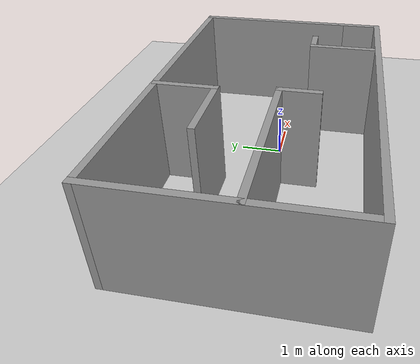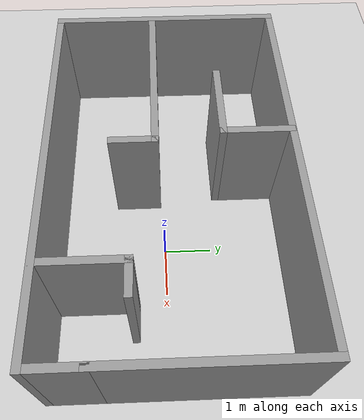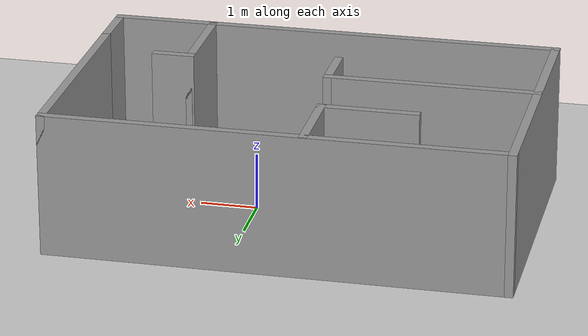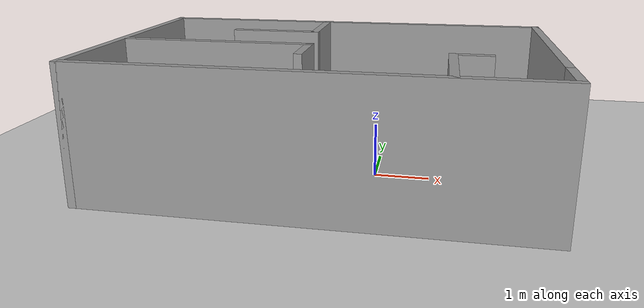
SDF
<sdf version="1.7">
 <world name="default">
  <light name="sun" type="directional">
   <pose>0 0 10 0 -0 0</pose>
   <diffuse>0.8 0.8 0.8 1</diffuse>
   <specular>0.2 0.2 0.2 1</specular>
   <attenuation>
    <range>1000</range>
    <constant>0.9</constant>
    <linear>0.01</linear>
    <quadratic>0.001</quadratic>
   </attenuation>
   <direction>-0.5 0.1 -0.9</direction>
   <spot><inner_angle>0</inner_angle><outer_angle>0</outer_angle><falloff>0</falloff></spot>
  </light>
  <model name="ground_plane">
   <static>1</static>
   <link name="link">
    <collision name="collision">
     <geometry><plane><normal>0 0 1</normal><size>100 100</size></plane></geometry>
     <surface><friction><ode><mu>100</mu><mu2>50</mu2></ode></friction></surface>
    </collision>
    <visual name="visual">
     <cast_shadows>0</cast_shadows>
     <geometry><plane><normal>0 0 1</normal><size>100 100</size></plane></geometry>
     <material>
      <script><uri>file://media/materials/scripts/gazebo.material</uri><name>Gazebo/Grey</name></script>
     </material>
    </visual>
   </link>
  </model>
  <gravity>0 0 -9.8</gravity>
  <magnetic_field>6e-06 2.3e-05 -4.2e-05</magnetic_field>
  <atmosphere type="adiabatic"/>
  <physics type="ode">
   <max_step_size>0.001</max_step_size>
   <real_time_factor>1</real_time_factor>
   <real_time_update_rate>1000</real_time_update_rate>
  </physics>
  <scene><ambient>0.4 0.4 0.4 1</ambient><background>0.7 0.7 0.7 1</background><shadows>1</shadows></scene>
  <audio><device>default</device></audio>
  <spherical_coordinates>
   <surface_model>EARTH_WGS84</surface_model>
   <latitude_deg>0</latitude_deg>
   <longitude_deg>0</longitude_deg>
   <elevation>0</elevation>
   <heading_deg>0</heading_deg>
  </spherical_coordinates>
  <model name="room">
   <pose>-0.895 0.637398 0 0 -0 0</pose>
   <link name="Wall_1">
    <collision name="Wall_1_Collision">
     <geometry><box><size>8 0.15 2.5</size></box></geometry>
     <pose>0 0 1.25 0 -0 0</pose>
    </collision>
    <visual name="Wall_1_Visual">
     <pose>0 0 1.25 0 -0 0</pose>
     <geometry><box><size>8 0.15 2.5</size></box></geometry>
     <material>
      <script><uri>file://media/materials/scripts/gazebo.material</uri><name>Gazebo/Grey</name></script>
      <ambient>1 1 1 1</ambient>
     </material>
     <meta><layer>0</layer></meta>
    </visual>
    <pose>0 1.9525 0 0 -0 0</pose>
   </link>
   <link name="Wall_10">
    <collision name="Wall_10_Collision">
     <geometry><box><size>8 0.15 2.5</size></box></geometry>
     <pose>0 0 1.25 0 -0 0</pose>
    </collision>
    <visual name="Wall_10_Visual">
     <pose>0 0 1.25 0 -0 0</pose>
     <geometry><box><size>8 0.15 2.5</size></box></geometry>
     <material>
      <script><uri>file://media/materials/scripts/gazebo.material</uri><name>Gazebo/Grey</name></script>
      <ambient>1 1 1 1</ambient>
     </material>
     <meta><layer>0</layer></meta>
    </visual>
    <pose>0 -2.8975 0 0 -0 0</pose>
   </link>
   <link name="Wall_12">
    <collision name="Wall_12_Collision">
     <geometry><box><size>1.5 0.15 2.5</size></box></geometry>
     <pose>0 0 1.25 0 -0 0</pose>
    </collision>
    <visual name="Wall_12_Visual">
     <pose>0 0 1.25 0 -0 0</pose>
     <geometry><box><size>1.5 0.15 2.5</size></box></geometry>
     <material>
      <script><uri>file://media/materials/scripts/gazebo.material</uri><name>Gazebo/Grey</name></script>
      <ambient>1 1 1 1</ambient>
     </material>
     <meta><layer>0</layer></meta>
    </visual>
    <pose>-0.49194 1.26027 0 0 -0 -1.5708</pose>
   </link>
   <link name="Wall_13">
    <collision name="Wall_13_Collision">
     <geometry><box><size>1.75 0.15 2.5</size></box></geometry>
     <pose>0 0 1.25 0 -0 0</pose>
    </collision>
    <visual name="Wall_13_Visual">
     <pose>0 0 1.25 0 -0 0</pose>
     <geometry><box><size>1.75 0.15 2.5</size></box></geometry>
     <material>
      <script><uri>file://media/materials/scripts/gazebo.material</uri><name>Gazebo/Grey</name></script>
      <ambient>1 1 1 1</ambient>
     </material>
     <meta><layer>0</layer></meta>
    </visual>
    <pose>-1.29194 0.575271 0 0 -0 3.14159</pose>
   </link>
   <link name="Wall_15">
    <collision name="Wall_15_Collision">
     <geometry><box><size>3.7413 0.15 2.5</size></box></geometry>
     <pose>0 0 1.25 0 -0 0</pose>
    </collision>
    <visual name="Wall_15_Visual">
     <pose>0 0 1.25 0 -0 0</pose>
     <geometry><box><size>3.7413 0.15 2.5</size></box></geometry>
     <material>
      <script><uri>file://media/materials/scripts/gazebo.material</uri><name>Gazebo/Grey</name></script>
      <ambient>1 1 1 1</ambient>
     </material>
     <meta><layer>0</layer></meta>
    </visual>
    <pose>-2.11822 -0.777512 0 0 -0 0</pose>
   </link>
   <link name="Wall_16">
    <collision name="Wall_16_Collision">
     <geometry><box><size>1 0.15 2.5</size></box></geometry>
     <pose>0 0 1.25 0 -0 0</pose>
    </collision>
    <visual name="Wall_16_Visual">
     <pose>0 0 1.25 0 -0 0</pose>
     <geometry><box><size>1 0.15 2.5</size></box></geometry>
     <material>
      <script><uri>file://media/materials/scripts/gazebo.material</uri><name>Gazebo/Grey</name></script>
      <ambient>1 1 1 1</ambient>
     </material>
     <meta><layer>0</layer></meta>
    </visual>
    <pose>-0.32257 -1.20251 0 0 -0 -1.5708</pose>
   </link>
   <link name="Wall_18">
    <collision name="Wall_18_Collision">
     <geometry><box><size>1.75 0.15 2.5</size></box></geometry>
     <pose>0 0 1.25 0 -0 0</pose>
    </collision>
    <visual name="Wall_18_Visual">
     <pose>0 0 1.25 0 -0 0</pose>
     <geometry><box><size>1.75 0.15 2.5</size></box></geometry>
     <material>
      <script><uri>file://media/materials/scripts/gazebo.material</uri><name>Gazebo/Grey</name></script>
      <ambient>1 1 1 1</ambient>
     </material>
     <meta><layer>0</layer></meta>
    </visual>
    <pose>2.21348 -2.06313 0 0 -0 1.5708</pose>
   </link>
   <link name="Wall_19">
    <collision name="Wall_19_Collision">
     <geometry><box><size>0.75 0.15 2.5</size></box></geometry>
     <pose>0 0 1.25 0 -0 0</pose>
    </collision>
    <visual name="Wall_19_Visual">
     <pose>0 0 1.25 0 -0 0</pose>
     <geometry><box><size>0.75 0.15 2.5</size></box></geometry>
     <material>
      <script><uri>file://media/materials/scripts/gazebo.material</uri><name>Gazebo/Grey</name></script>
      <ambient>1 1 1 1</ambient>
     </material>
     <meta><layer>0</layer></meta>
    </visual>
    <pose>2.51348 -1.26313 0 0 -0 0</pose>
   </link>
   <link name="Wall_3">
    <collision name="Wall_3_Collision">
     <geometry><box><size>4 0.15 2.5</size></box></geometry>
     <pose>0 0 1.25 0 -0 0</pose>
    </collision>
    <visual name="Wall_3_Visual">
     <pose>0 0 1.25 0 -0 0</pose>
     <geometry><box><size>4 0.15 2.5</size></box></geometry>
     <material>
      <script><uri>file://media/materials/scripts/gazebo.material</uri><name>Gazebo/Grey</name></script>
      <ambient>1 1 1 1</ambient>
     </material>
     <meta><layer>0</layer></meta>
    </visual>
    <pose>3.925 0.0275 0 0 -0 -1.5708</pose>
   </link>
   <link name="Wall_5">
    <collision name="Wall_5_Collision">
     <geometry><box><size>1 0.15 2.5</size></box></geometry>
     <pose>0 0 1.25 0 -0 0</pose>
    </collision>
    <visual name="Wall_5_Visual">
     <pose>0 0 1.25 0 -0 0</pose>
     <geometry><box><size>1 0.15 2.5</size></box></geometry>
     <material>
      <script><uri>file://media/materials/scripts/gazebo.material</uri><name>Gazebo/Grey</name></script>
      <ambient>1 1 1 1</ambient>
     </material>
     <meta><layer>0</layer></meta>
    </visual>
    <pose>3.925 -2.3225 0 0 -0 -1.5708</pose>
   </link>
   <link name="Wall_9">
    <collision name="Wall_9_Collision">
     <geometry><box><size>5 0.15 2.5</size></box></geometry>
     <pose>0 0 1.25 0 -0 0</pose>
    </collision>
    <visual name="Wall_9_Visual">
     <pose>0 0 1.25 0 -0 0</pose>
     <geometry><box><size>5 0.15 2.5</size></box></geometry>
     <material>
      <script><uri>file://media/materials/scripts/gazebo.material</uri><name>Gazebo/Grey</name></script>
      <ambient>1 1 1 1</ambient>
     </material>
     <meta><layer>0</layer></meta>
    </visual>
    <pose>-3.925 -0.4725 0 0 -0 -1.5708</pose>
   </link>
   <static>1</static>
  </model>
 </world>
</sdf>
